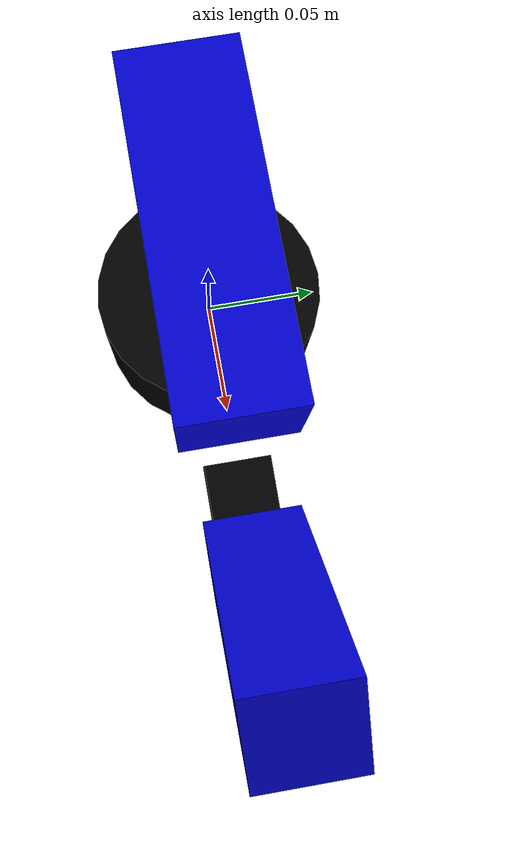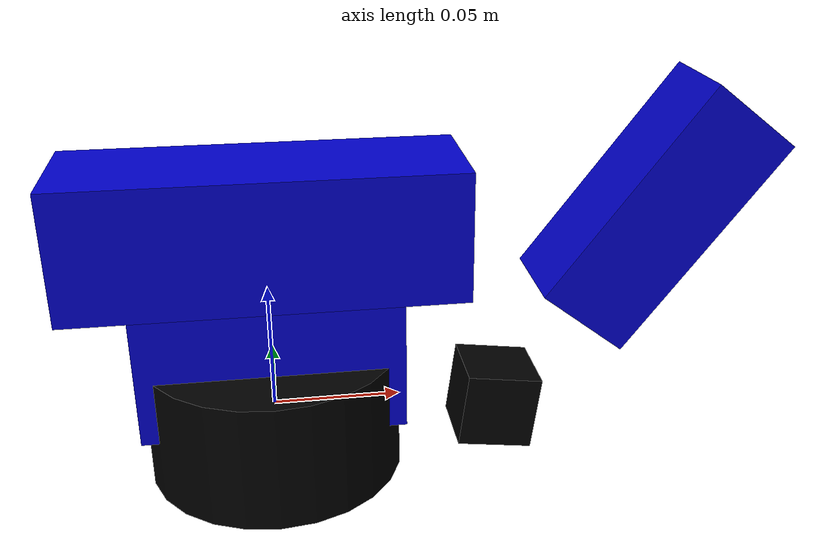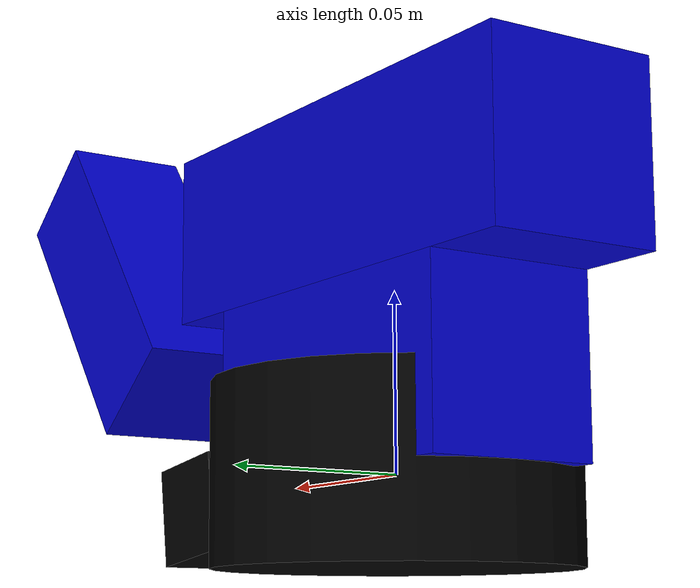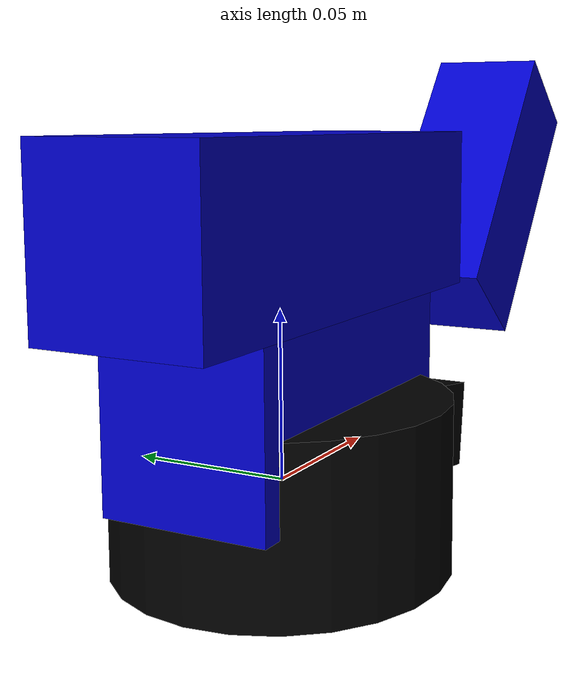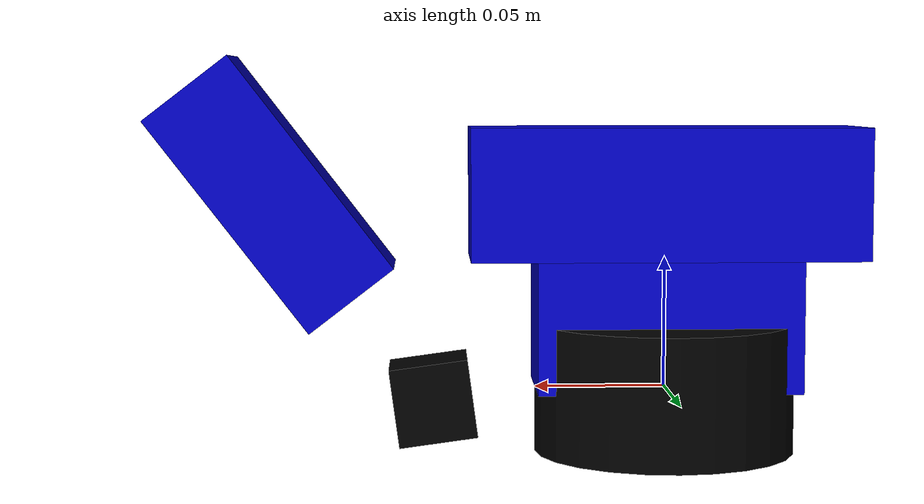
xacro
<?xml version="1.0"?>
<robot xmlns:xacro="http://www.ros.org/wiki/xacro" name="eezybotarm">

    <!-- Materials -->
    <material name="black">
        <color rgba="0 0 0 1"/>
    </material>
    <material name="blue">
        <color rgba="0 0 0.8 1"/>
    </material>

    <!-- Base Link -->
    <link name="base_link">
        <visual>
            <geometry>
                <cylinder length="0.05" radius="0.05"/>
            </geometry>
            <material name="black"/>
        </visual>
    </link>

    <!-- Base Joint -->
    <joint name="base_joint" type="revolute">
        <parent link="base_link"/>
        <child link="shoulder_link"/>
        <origin xyz="0 0 0.025" rpy="0 0 0"/>
        <axis xyz="0 0 1"/>
        <limit lower="0" upper="3.14159" effort="1000" velocity="1.0"/>
        <safety_controller k_position="100"
                          k_velocity="10"
                          soft_lower_limit="0.1"
                          soft_upper_limit="3.04159"/>
    </joint>

    <!-- Shoulder Link -->
    <link name="shoulder_link">
        <visual>
            <geometry>
                <box size="0.1 0.05 0.05"/>
            </geometry>
            <material name="blue"/>
        </visual>
    </link>

    <!-- Shoulder Joint -->
    <joint name="shoulder_joint" type="revolute">
        <parent link="shoulder_link"/>
        <child link="upper_arm_link"/>
        <origin xyz="0 0 0.05" rpy="0 0 0"/>
        <axis xyz="0 1 0"/>
        <limit lower="0" upper="1.22" effort="1000" velocity="1.0"/>  <!-- 70 degrees -->
        <safety_controller k_position="100"
                          k_velocity="10"
                          soft_lower_limit="0.1"
                          soft_upper_limit="1.12"/>
    </joint>

    <!-- Upper Arm Link -->
    <link name="upper_arm_link">
        <visual>
            <geometry>
                <box size="0.15 0.05 0.05"/>
            </geometry>
            <material name="blue"/>
        </visual>
    </link>

    <!-- Elbow Joint -->
    <joint name="elbow_joint" type="revolute">
        <parent link="upper_arm_link"/>
        <child link="forearm_link"/>
        <origin xyz="0.15 0 0" rpy="0 0 0"/>
        <axis xyz="0 1 0"/>
        <limit lower="1.48" upper="2.97" effort="1000" velocity="1.0"/>  <!-- 85 to 170 degrees -->
        <safety_controller k_position="100"
                          k_velocity="10"
                          soft_lower_limit="1.58"
                          soft_upper_limit="2.87"/>
    </joint>

    <!-- Forearm Link -->
    <link name="forearm_link">
        <visual>
            <geometry>
                <box size="0.1 0.04 0.04"/>
            </geometry>
            <material name="blue"/>
        </visual>
    </link>

    <!-- Gripper Joint -->
    <joint name="gripper_joint" type="revolute">
        <parent link="forearm_link"/>
        <child link="gripper_link"/>
        <origin xyz="0.1 0 0" rpy="0 0 0"/>
        <axis xyz="0 1 0"/>
        <limit lower="0.35" upper="1.75" effort="1000" velocity="1.0"/>  <!-- 20 to 100 degrees -->
        <safety_controller k_position="100"
                          k_velocity="10"
                          soft_lower_limit="0.45"
                          soft_upper_limit="1.65"/>
    </joint>

    <!-- Gripper Link -->
    <link name="gripper_link">
        <visual>
            <geometry>
                <box size="0.03 0.03 0.03"/>
            </geometry>
            <material name="black"/>
        </visual>
    </link>

    <!-- ros2_control integration -->
    <ros2_control name="EEZYbotARM" type="system">
        <hardware>
            <plugin>eezybotarm_control/EEZYbotHardware</plugin>
            <param name="example_param">1</param>
        </hardware>
        <joint name="base_joint">
            <command_interface name="position"/>
            <state_interface name="position"/>
            <state_interface name="velocity"/>
        </joint>
        <joint name="shoulder_joint">
            <command_interface name="position"/>
            <state_interface name="position"/>
            <state_interface name="velocity"/>
        </joint>
        <joint name="elbow_joint">
            <command_interface name="position"/>
            <state_interface name="position"/>
            <state_interface name="velocity"/>
        </joint>
        <joint name="gripper_joint">
            <command_interface name="position"/>
            <state_interface name="position"/>
            <state_interface name="velocity"/>
        </joint>
    </ros2_control>

</robot>
